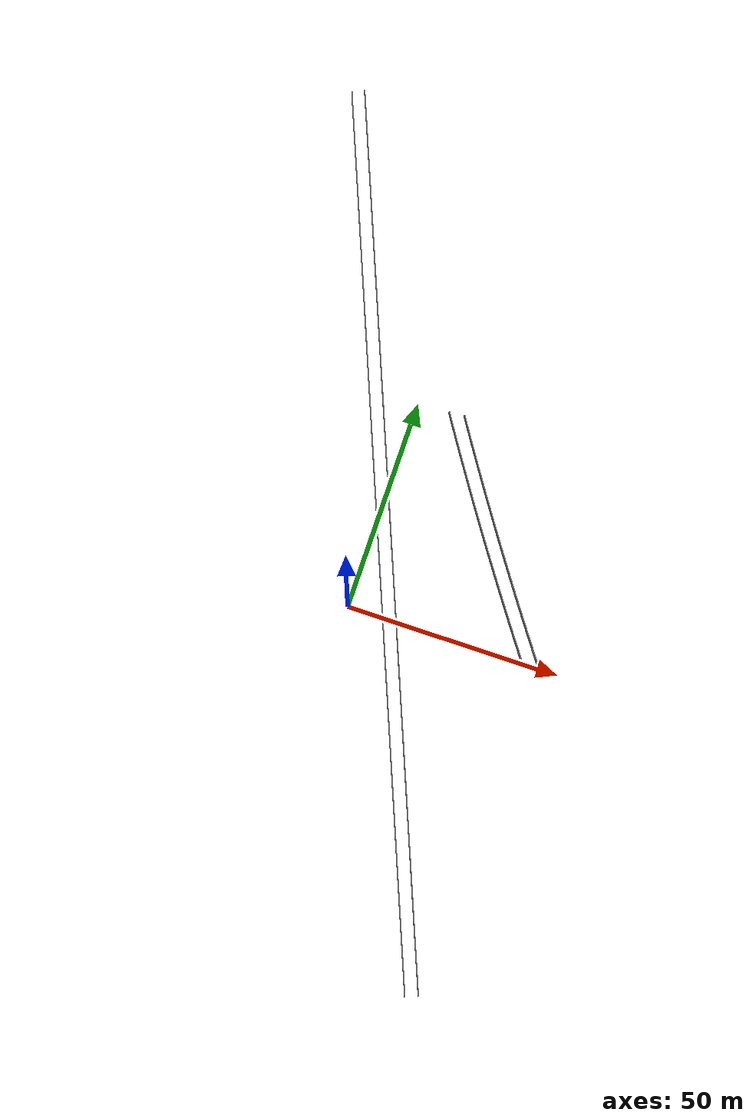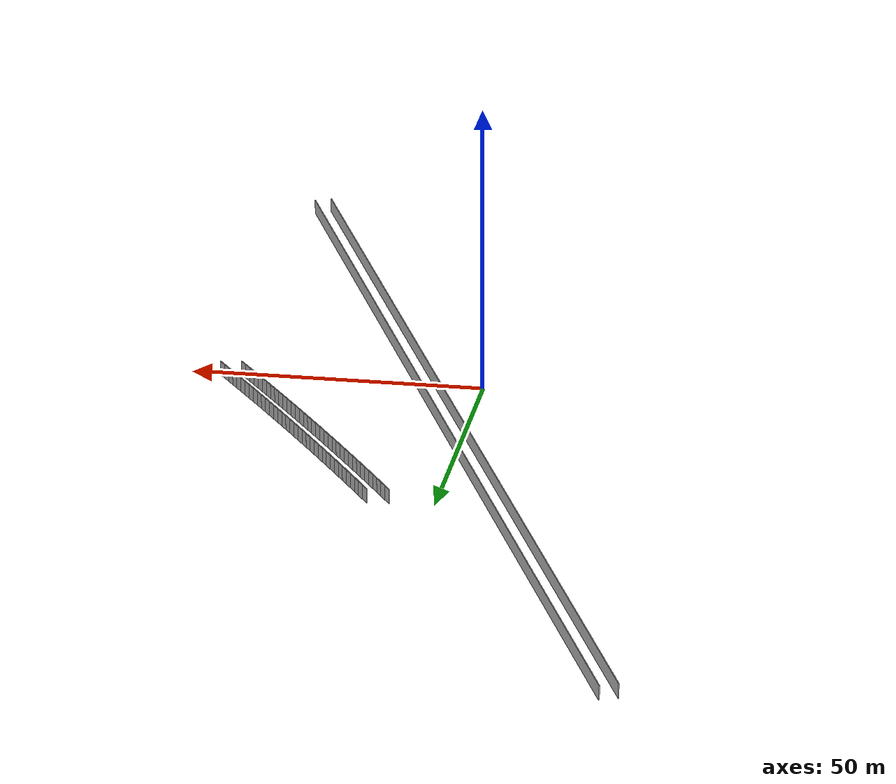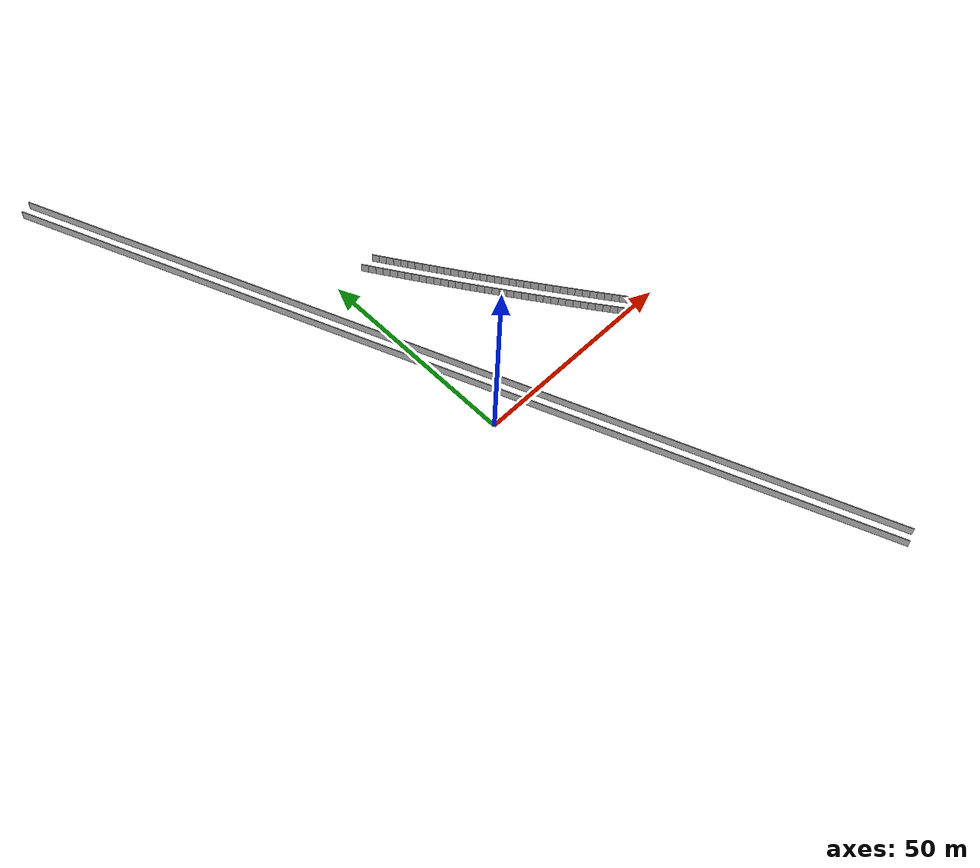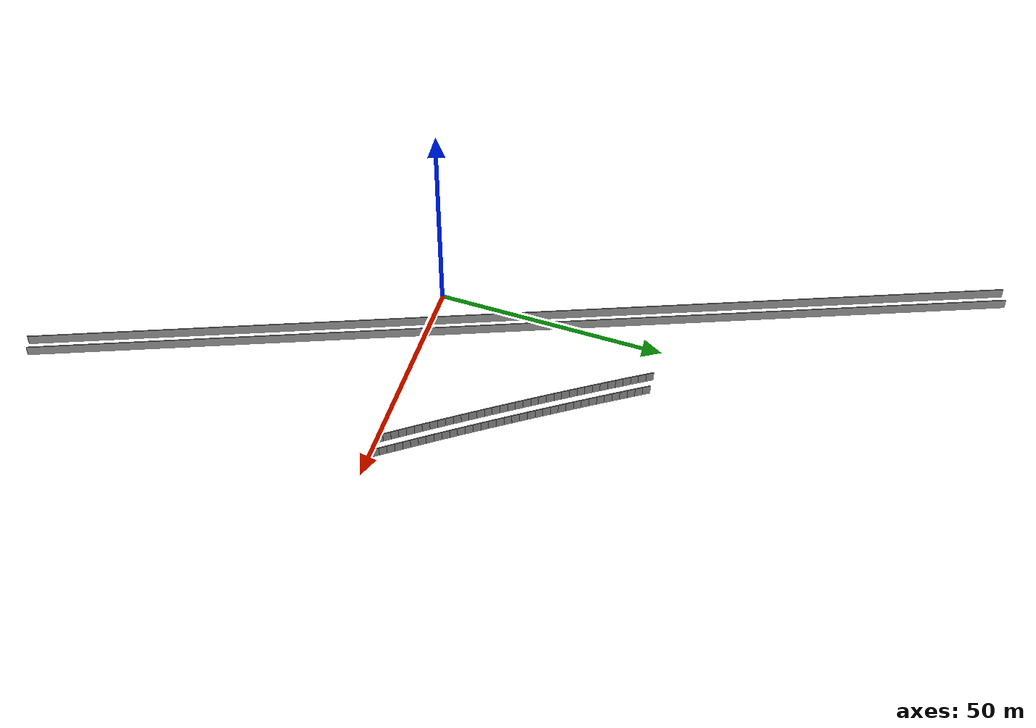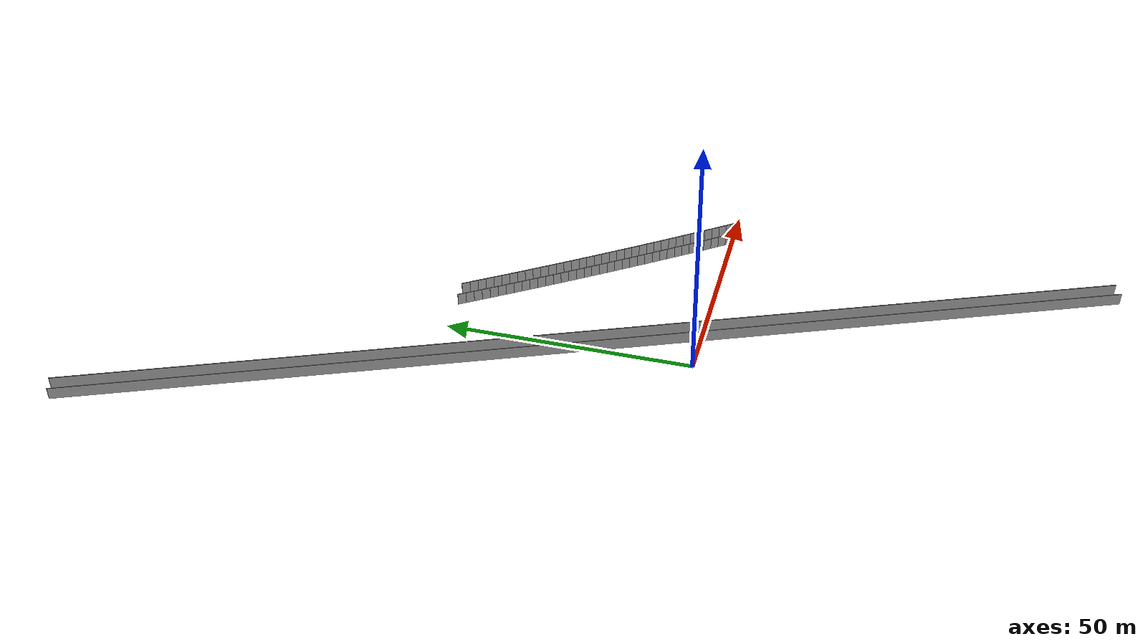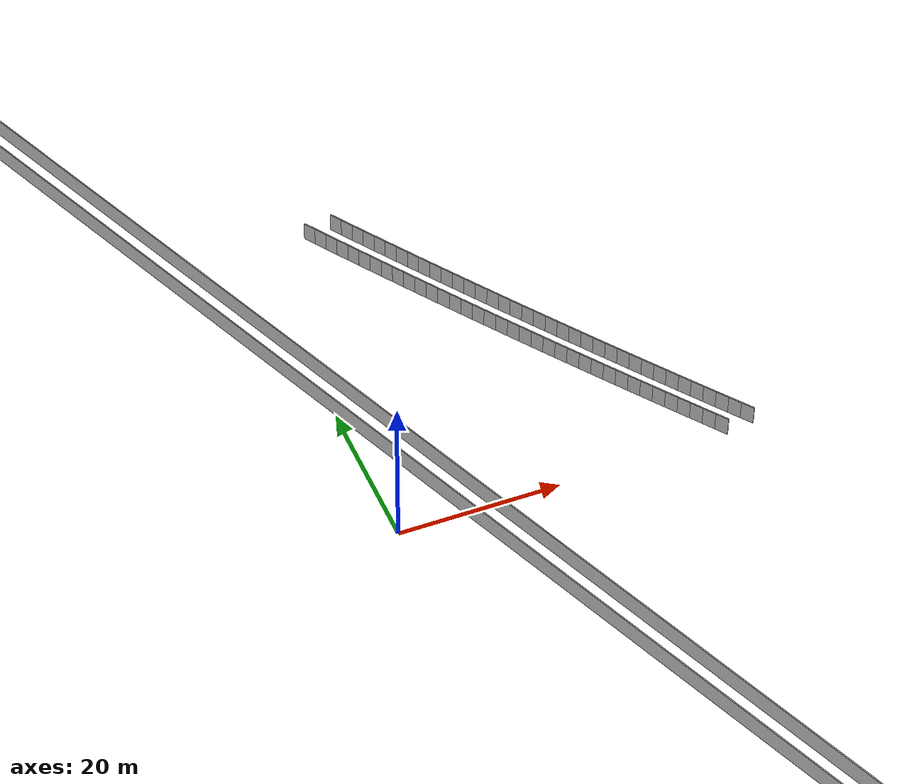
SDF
<?xml version="1.0" ?>
<sdf version="1.6">
  <model name="sps_4825">
    <pose frame="">0 0 0 0 -0 0</pose>
    <static>1</static>
    <self_collide>0</self_collide>
    <allow_auto_disable>0</allow_auto_disable>
    <link name="Wall3503">
      <kinematic>0</kinematic>
      <gravity>1</gravity>
      <self_collide>0</self_collide>
      <collision name="collision">
        <geometry>
          <box>
            <size>212.029 0.15 2.5</size>
          </box>
        </geometry>
        <pose frame="">0 0 0 0 -0 0</pose>
      </collision>
      <visual name="visual">
        <geometry>
          <box>
            <size>212.029 0.15 2.5</size>
          </box>
        </geometry>
        <pose frame="">0 0 0 0 -0 0</pose>
        <cast_shadows>1</cast_shadows>
        <transparency>0.0</transparency>
      </visual>
      <pose frame="">0.909141 18.134 1.25 0 0 -1.18648</pose>
    </link>
    <link name="Wall6498">
      <kinematic>0</kinematic>
      <gravity>1</gravity>
      <self_collide>0</self_collide>
      <collision name="collision">
        <geometry>
          <box>
            <size>1.68629 0.15 2.5</size>
          </box>
        </geometry>
        <pose frame="">0 0 0 0 -0 0</pose>
      </collision>
      <visual name="visual">
        <geometry>
          <box>
            <size>1.68629 0.15 2.5</size>
          </box>
        </geometry>
        <pose frame="">0 0 0 0 -0 0</pose>
        <cast_shadows>1</cast_shadows>
        <transparency>0.0</transparency>
      </visual>
      <pose frame="">7.78435 49.5371 1.25 0 0 -1.00286</pose>
    </link>
    <link name="Wall6499">
      <kinematic>0</kinematic>
      <gravity>1</gravity>
      <self_collide>0</self_collide>
      <collision name="collision">
        <geometry>
          <box>
            <size>1.68605 0.15 2.5</size>
          </box>
        </geometry>
        <pose frame="">0 0 0 0 -0 0</pose>
      </collision>
      <visual name="visual">
        <geometry>
          <box>
            <size>1.68605 0.15 2.5</size>
          </box>
        </geometry>
        <pose frame="">0 0 0 0 -0 0</pose>
        <cast_shadows>1</cast_shadows>
        <transparency>0.0</transparency>
      </visual>
      <pose frame="">8.69256 48.1164 1.25 0 0 -1.00114</pose>
    </link>
    <link name="Wall6500">
      <kinematic>0</kinematic>
      <gravity>1</gravity>
      <self_collide>0</self_collide>
      <collision name="collision">
        <geometry>
          <box>
            <size>1.68639 0.15 2.5</size>
          </box>
        </geometry>
        <pose frame="">0 0 0 0 -0 0</pose>
      </collision>
      <visual name="visual">
        <geometry>
          <box>
            <size>1.68639 0.15 2.5</size>
          </box>
        </geometry>
        <pose frame="">0 0 0 0 -0 0</pose>
        <cast_shadows>1</cast_shadows>
        <transparency>0.0</transparency>
      </visual>
      <pose frame="">9.60314 46.6972 1.25 0 0 -0.999548</pose>
    </link>
    <link name="Wall6501">
      <kinematic>0</kinematic>
      <gravity>1</gravity>
      <self_collide>0</self_collide>
      <collision name="collision">
        <geometry>
          <box>
            <size>1.68609 0.15 2.5</size>
          </box>
        </geometry>
        <pose frame="">0 0 0 0 -0 0</pose>
      </collision>
      <visual name="visual">
        <geometry>
          <box>
            <size>1.68609 0.15 2.5</size>
          </box>
        </geometry>
        <pose frame="">0 0 0 0 -0 0</pose>
        <cast_shadows>1</cast_shadows>
        <transparency>0.0</transparency>
      </visual>
      <pose frame="">10.5161 45.2795 1.25 0 0 -0.997754</pose>
    </link>
    <link name="Wall6502">
      <kinematic>0</kinematic>
      <gravity>1</gravity>
      <self_collide>0</self_collide>
      <collision name="collision">
        <geometry>
          <box>
            <size>1.68629 0.15 2.5</size>
          </box>
        </geometry>
        <pose frame="">0 0 0 0 -0 0</pose>
      </collision>
      <visual name="visual">
        <geometry>
          <box>
            <size>1.68629 0.15 2.5</size>
          </box>
        </geometry>
        <pose frame="">0 0 0 0 -0 0</pose>
        <cast_shadows>1</cast_shadows>
        <transparency>0.0</transparency>
      </visual>
      <pose frame="">11.4315 43.8634 1.25 0 0 -0.996105</pose>
    </link>
    <link name="Wall6503">
      <kinematic>0</kinematic>
      <gravity>1</gravity>
      <self_collide>0</self_collide>
      <collision name="collision">
        <geometry>
          <box>
            <size>1.686 0.15 2.5</size>
          </box>
        </geometry>
        <pose frame="">0 0 0 0 -0 0</pose>
      </collision>
      <visual name="visual">
        <geometry>
          <box>
            <size>1.686 0.15 2.5</size>
          </box>
        </geometry>
        <pose frame="">0 0 0 0 -0 0</pose>
        <cast_shadows>1</cast_shadows>
        <transparency>0.0</transparency>
      </visual>
      <pose frame="">12.3493 42.4489 1.25 0 0 -0.994441</pose>
    </link>
    <link name="Wall6504">
      <kinematic>0</kinematic>
      <gravity>1</gravity>
      <self_collide>0</self_collide>
      <collision name="collision">
        <geometry>
          <box>
            <size>1.68638 0.15 2.5</size>
          </box>
        </geometry>
        <pose frame="">0 0 0 0 -0 0</pose>
      </collision>
      <visual name="visual">
        <geometry>
          <box>
            <size>1.68638 0.15 2.5</size>
          </box>
        </geometry>
        <pose frame="">0 0 0 0 -0 0</pose>
        <cast_shadows>1</cast_shadows>
        <transparency>0.0</transparency>
      </visual>
      <pose frame="">13.2694 41.0359 1.25 0 0 -0.992772</pose>
    </link>
    <link name="Wall6505">
      <kinematic>0</kinematic>
      <gravity>1</gravity>
      <self_collide>0</self_collide>
      <collision name="collision">
        <geometry>
          <box>
            <size>1.68605 0.15 2.5</size>
          </box>
        </geometry>
        <pose frame="">0 0 0 0 -0 0</pose>
      </collision>
      <visual name="visual">
        <geometry>
          <box>
            <size>1.68605 0.15 2.5</size>
          </box>
        </geometry>
        <pose frame="">0 0 0 0 -0 0</pose>
        <cast_shadows>1</cast_shadows>
        <transparency>0.0</transparency>
      </visual>
      <pose frame="">14.1919 39.6244 1.25 0 0 -0.991087</pose>
    </link>
    <link name="Wall6506">
      <kinematic>0</kinematic>
      <gravity>1</gravity>
      <self_collide>0</self_collide>
      <collision name="collision">
        <geometry>
          <box>
            <size>1.68631 0.15 2.5</size>
          </box>
        </geometry>
        <pose frame="">0 0 0 0 -0 0</pose>
      </collision>
      <visual name="visual">
        <geometry>
          <box>
            <size>1.68631 0.15 2.5</size>
          </box>
        </geometry>
        <pose frame="">0 0 0 0 -0 0</pose>
        <cast_shadows>1</cast_shadows>
        <transparency>0.0</transparency>
      </visual>
      <pose frame="">15.1168 38.2145 1.25 0 0 -0.989329</pose>
    </link>
    <link name="Wall6507">
      <kinematic>0</kinematic>
      <gravity>1</gravity>
      <self_collide>0</self_collide>
      <collision name="collision">
        <geometry>
          <box>
            <size>1.68604 0.15 2.5</size>
          </box>
        </geometry>
        <pose frame="">0 0 0 0 -0 0</pose>
      </collision>
      <visual name="visual">
        <geometry>
          <box>
            <size>1.68604 0.15 2.5</size>
          </box>
        </geometry>
        <pose frame="">0 0 0 0 -0 0</pose>
        <cast_shadows>1</cast_shadows>
        <transparency>0.0</transparency>
      </visual>
      <pose frame="">16.0441 36.8062 1.25 0 0 -0.987663</pose>
    </link>
    <link name="Wall6508">
      <kinematic>0</kinematic>
      <gravity>1</gravity>
      <self_collide>0</self_collide>
      <collision name="collision">
        <geometry>
          <box>
            <size>1.68634 0.15 2.5</size>
          </box>
        </geometry>
        <pose frame="">0 0 0 0 -0 0</pose>
      </collision>
      <visual name="visual">
        <geometry>
          <box>
            <size>1.68634 0.15 2.5</size>
          </box>
        </geometry>
        <pose frame="">0 0 0 0 -0 0</pose>
        <cast_shadows>1</cast_shadows>
        <transparency>0.0</transparency>
      </visual>
      <pose frame="">16.9737 35.3994 1.25 0 0 -0.986086</pose>
    </link>
    <link name="Wall6509">
      <kinematic>0</kinematic>
      <gravity>1</gravity>
      <self_collide>0</self_collide>
      <collision name="collision">
        <geometry>
          <box>
            <size>1.68608 0.15 2.5</size>
          </box>
        </geometry>
        <pose frame="">0 0 0 0 -0 0</pose>
      </collision>
      <visual name="visual">
        <geometry>
          <box>
            <size>1.68608 0.15 2.5</size>
          </box>
        </geometry>
        <pose frame="">0 0 0 0 -0 0</pose>
        <cast_shadows>1</cast_shadows>
        <transparency>0.0</transparency>
      </visual>
      <pose frame="">17.9055 33.9941 1.25 0 0 -0.98442</pose>
    </link>
    <link name="Wall6510">
      <kinematic>0</kinematic>
      <gravity>1</gravity>
      <self_collide>0</self_collide>
      <collision name="collision">
        <geometry>
          <box>
            <size>1.68636 0.15 2.5</size>
          </box>
        </geometry>
        <pose frame="">0 0 0 0 -0 0</pose>
      </collision>
      <visual name="visual">
        <geometry>
          <box>
            <size>1.68636 0.15 2.5</size>
          </box>
        </geometry>
        <pose frame="">0 0 0 0 -0 0</pose>
        <cast_shadows>1</cast_shadows>
        <transparency>0.0</transparency>
      </visual>
      <pose frame="">18.8398 32.5904 1.25 0 0 -0.982663</pose>
    </link>
    <link name="Wall6511">
      <kinematic>0</kinematic>
      <gravity>1</gravity>
      <self_collide>0</self_collide>
      <collision name="collision">
        <geometry>
          <box>
            <size>1.68604 0.15 2.5</size>
          </box>
        </geometry>
        <pose frame="">0 0 0 0 -0 0</pose>
      </collision>
      <visual name="visual">
        <geometry>
          <box>
            <size>1.68604 0.15 2.5</size>
          </box>
        </geometry>
        <pose frame="">0 0 0 0 -0 0</pose>
        <cast_shadows>1</cast_shadows>
        <transparency>0.0</transparency>
      </visual>
      <pose frame="">19.7768 31.1885 1.25 0 0 -0.980535</pose>
    </link>
    <link name="Wall6512">
      <kinematic>0</kinematic>
      <gravity>1</gravity>
      <self_collide>0</self_collide>
      <collision name="collision">
        <geometry>
          <box>
            <size>1.68641 0.15 2.5</size>
          </box>
        </geometry>
        <pose frame="">0 0 0 0 -0 0</pose>
      </collision>
      <visual name="visual">
        <geometry>
          <box>
            <size>1.68641 0.15 2.5</size>
          </box>
        </geometry>
        <pose frame="">0 0 0 0 -0 0</pose>
        <cast_shadows>1</cast_shadows>
        <transparency>0.0</transparency>
      </visual>
      <pose frame="">20.7163 29.7882 1.25 0 0 -0.97924</pose>
    </link>
    <link name="Wall6513">
      <kinematic>0</kinematic>
      <gravity>1</gravity>
      <self_collide>0</self_collide>
      <collision name="collision">
        <geometry>
          <box>
            <size>1.68598 0.15 2.5</size>
          </box>
        </geometry>
        <pose frame="">0 0 0 0 -0 0</pose>
      </collision>
      <visual name="visual">
        <geometry>
          <box>
            <size>1.68598 0.15 2.5</size>
          </box>
        </geometry>
        <pose frame="">0 0 0 0 -0 0</pose>
        <cast_shadows>1</cast_shadows>
        <transparency>0.0</transparency>
      </visual>
      <pose frame="">21.6579 28.3894 1.25 0 0 -0.977412</pose>
    </link>
    <link name="Wall6514">
      <kinematic>0</kinematic>
      <gravity>1</gravity>
      <self_collide>0</self_collide>
      <collision name="collision">
        <geometry>
          <box>
            <size>1.68628 0.15 2.5</size>
          </box>
        </geometry>
        <pose frame="">0 0 0 0 -0 0</pose>
      </collision>
      <visual name="visual">
        <geometry>
          <box>
            <size>1.68628 0.15 2.5</size>
          </box>
        </geometry>
        <pose frame="">0 0 0 0 -0 0</pose>
        <cast_shadows>1</cast_shadows>
        <transparency>0.0</transparency>
      </visual>
      <pose frame="">22.6017 26.9922 1.25 0 0 -0.975917</pose>
    </link>
    <link name="Wall6515">
      <kinematic>0</kinematic>
      <gravity>1</gravity>
      <self_collide>0</self_collide>
      <collision name="collision">
        <geometry>
          <box>
            <size>1.6861 0.15 2.5</size>
          </box>
        </geometry>
        <pose frame="">0 0 0 0 -0 0</pose>
      </collision>
      <visual name="visual">
        <geometry>
          <box>
            <size>1.6861 0.15 2.5</size>
          </box>
        </geometry>
        <pose frame="">0 0 0 0 -0 0</pose>
        <cast_shadows>1</cast_shadows>
        <transparency>0.0</transparency>
      </visual>
      <pose frame="">23.5479 25.5965 1.25 0 0 -0.974139</pose>
    </link>
    <link name="Wall6516">
      <kinematic>0</kinematic>
      <gravity>1</gravity>
      <self_collide>0</self_collide>
      <collision name="collision">
        <geometry>
          <box>
            <size>1.68611 0.15 2.5</size>
          </box>
        </geometry>
        <pose frame="">0 0 0 0 -0 0</pose>
      </collision>
      <visual name="visual">
        <geometry>
          <box>
            <size>1.68611 0.15 2.5</size>
          </box>
        </geometry>
        <pose frame="">0 0 0 0 -0 0</pose>
        <cast_shadows>1</cast_shadows>
        <transparency>0.0</transparency>
      </visual>
      <pose frame="">24.4965 24.2025 1.25 0 0 -0.972523</pose>
    </link>
    <link name="Wall6517">
      <kinematic>0</kinematic>
      <gravity>1</gravity>
      <self_collide>0</self_collide>
      <collision name="collision">
        <geometry>
          <box>
            <size>1.68621 0.15 2.5</size>
          </box>
        </geometry>
        <pose frame="">0 0 0 0 -0 0</pose>
      </collision>
      <visual name="visual">
        <geometry>
          <box>
            <size>1.68621 0.15 2.5</size>
          </box>
        </geometry>
        <pose frame="">0 0 0 0 -0 0</pose>
        <cast_shadows>1</cast_shadows>
        <transparency>0.0</transparency>
      </visual>
      <pose frame="">25.4473 22.81 1.25 0 0 -0.970897</pose>
    </link>
    <link name="Wall6518">
      <kinematic>0</kinematic>
      <gravity>1</gravity>
      <self_collide>0</self_collide>
      <collision name="collision">
        <geometry>
          <box>
            <size>1.68628 0.15 2.5</size>
          </box>
        </geometry>
        <pose frame="">0 0 0 0 -0 0</pose>
      </collision>
      <visual name="visual">
        <geometry>
          <box>
            <size>1.68628 0.15 2.5</size>
          </box>
        </geometry>
        <pose frame="">0 0 0 0 -0 0</pose>
        <cast_shadows>1</cast_shadows>
        <transparency>0.0</transparency>
      </visual>
      <pose frame="">26.4004 21.419 1.25 0 0 -0.969171</pose>
    </link>
    <link name="Wall6519">
      <kinematic>0</kinematic>
      <gravity>1</gravity>
      <self_collide>0</self_collide>
      <collision name="collision">
        <geometry>
          <box>
            <size>1.68632 0.15 2.5</size>
          </box>
        </geometry>
        <pose frame="">0 0 0 0 -0 0</pose>
      </collision>
      <visual name="visual">
        <geometry>
          <box>
            <size>1.68632 0.15 2.5</size>
          </box>
        </geometry>
        <pose frame="">0 0 0 0 -0 0</pose>
        <cast_shadows>1</cast_shadows>
        <transparency>0.0</transparency>
      </visual>
      <pose frame="">27.356 20.0296 1.25 0 0 -0.967474</pose>
    </link>
    <link name="Wall6520">
      <kinematic>0</kinematic>
      <gravity>1</gravity>
      <self_collide>0</self_collide>
      <collision name="collision">
        <geometry>
          <box>
            <size>1.6861 0.15 2.5</size>
          </box>
        </geometry>
        <pose frame="">0 0 0 0 -0 0</pose>
      </collision>
      <visual name="visual">
        <geometry>
          <box>
            <size>1.6861 0.15 2.5</size>
          </box>
        </geometry>
        <pose frame="">0 0 0 0 -0 0</pose>
        <cast_shadows>1</cast_shadows>
        <transparency>0.0</transparency>
      </visual>
      <pose frame="">28.314 18.6419 1.25 0 0 -0.965755</pose>
    </link>
    <link name="Wall6521">
      <kinematic>0</kinematic>
      <gravity>1</gravity>
      <self_collide>0</self_collide>
      <collision name="collision">
        <geometry>
          <box>
            <size>1.68631 0.15 2.5</size>
          </box>
        </geometry>
        <pose frame="">0 0 0 0 -0 0</pose>
      </collision>
      <visual name="visual">
        <geometry>
          <box>
            <size>1.68631 0.15 2.5</size>
          </box>
        </geometry>
        <pose frame="">0 0 0 0 -0 0</pose>
        <cast_shadows>1</cast_shadows>
        <transparency>0.0</transparency>
      </visual>
      <pose frame="">29.2742 17.2558 1.25 0 0 -0.964171</pose>
    </link>
    <link name="Wall6522">
      <kinematic>0</kinematic>
      <gravity>1</gravity>
      <self_collide>0</self_collide>
      <collision name="collision">
        <geometry>
          <box>
            <size>1.68616 0.15 2.5</size>
          </box>
        </geometry>
        <pose frame="">0 0 0 0 -0 0</pose>
      </collision>
      <visual name="visual">
        <geometry>
          <box>
            <size>1.68616 0.15 2.5</size>
          </box>
        </geometry>
        <pose frame="">0 0 0 0 -0 0</pose>
        <cast_shadows>1</cast_shadows>
        <transparency>0.0</transparency>
      </visual>
      <pose frame="">30.2367 15.8713 1.25 0 0 -0.962342</pose>
    </link>
    <link name="Wall6523">
      <kinematic>0</kinematic>
      <gravity>1</gravity>
      <self_collide>0</self_collide>
      <collision name="collision">
        <geometry>
          <box>
            <size>1.68616 0.15 2.5</size>
          </box>
        </geometry>
        <pose frame="">0 0 0 0 -0 0</pose>
      </collision>
      <visual name="visual">
        <geometry>
          <box>
            <size>1.68616 0.15 2.5</size>
          </box>
        </geometry>
        <pose frame="">0 0 0 0 -0 0</pose>
        <cast_shadows>1</cast_shadows>
        <transparency>0.0</transparency>
      </visual>
      <pose frame="">31.2017 14.4885 1.25 0 0 -0.960755</pose>
    </link>
    <link name="Wall6524">
      <kinematic>0</kinematic>
      <gravity>1</gravity>
      <self_collide>0</self_collide>
      <collision name="collision">
        <geometry>
          <box>
            <size>1.68623 0.15 2.5</size>
          </box>
        </geometry>
        <pose frame="">0 0 0 0 -0 0</pose>
      </collision>
      <visual name="visual">
        <geometry>
          <box>
            <size>1.68623 0.15 2.5</size>
          </box>
        </geometry>
        <pose frame="">0 0 0 0 -0 0</pose>
        <cast_shadows>1</cast_shadows>
        <transparency>0.0</transparency>
      </visual>
      <pose frame="">32.1688 13.1073 1.25 0 0 -0.959059</pose>
    </link>
    <link name="Wall6525">
      <kinematic>0</kinematic>
      <gravity>1</gravity>
      <self_collide>0</self_collide>
      <collision name="collision">
        <geometry>
          <box>
            <size>1.68603 0.15 2.5</size>
          </box>
        </geometry>
        <pose frame="">0 0 0 0 -0 0</pose>
      </collision>
      <visual name="visual">
        <geometry>
          <box>
            <size>1.68603 0.15 2.5</size>
          </box>
        </geometry>
        <pose frame="">0 0 0 0 -0 0</pose>
        <cast_shadows>1</cast_shadows>
        <transparency>0.0</transparency>
      </visual>
      <pose frame="">33.1384 11.7278 1.25 0 0 -0.957339</pose>
    </link>
    <link name="Wall6526">
      <kinematic>0</kinematic>
      <gravity>1</gravity>
      <self_collide>0</self_collide>
      <collision name="collision">
        <geometry>
          <box>
            <size>1.68622 0.15 2.5</size>
          </box>
        </geometry>
        <pose frame="">0 0 0 0 -0 0</pose>
      </collision>
      <visual name="visual">
        <geometry>
          <box>
            <size>1.68622 0.15 2.5</size>
          </box>
        </geometry>
        <pose frame="">0 0 0 0 -0 0</pose>
        <cast_shadows>1</cast_shadows>
        <transparency>0.0</transparency>
      </visual>
      <pose frame="">34.1102 10.3499 1.25 0 0 -0.955735</pose>
    </link>
    <link name="Wall6527">
      <kinematic>0</kinematic>
      <gravity>1</gravity>
      <self_collide>0</self_collide>
      <collision name="collision">
        <geometry>
          <box>
            <size>1.68628 0.15 2.5</size>
          </box>
        </geometry>
        <pose frame="">0 0 0 0 -0 0</pose>
      </collision>
      <visual name="visual">
        <geometry>
          <box>
            <size>1.68628 0.15 2.5</size>
          </box>
        </geometry>
        <pose frame="">0 0 0 0 -0 0</pose>
        <cast_shadows>1</cast_shadows>
        <transparency>0.0</transparency>
      </visual>
      <pose frame="">35.0843 8.97349 1.25 0 0 -0.953989</pose>
    </link>
    <link name="Wall6528">
      <kinematic>0</kinematic>
      <gravity>1</gravity>
      <self_collide>0</self_collide>
      <collision name="collision">
        <geometry>
          <box>
            <size>1.68616 0.15 2.5</size>
          </box>
        </geometry>
        <pose frame="">0 0 0 0 -0 0</pose>
      </collision>
      <visual name="visual">
        <geometry>
          <box>
            <size>1.68616 0.15 2.5</size>
          </box>
        </geometry>
        <pose frame="">0 0 0 0 -0 0</pose>
        <cast_shadows>1</cast_shadows>
        <transparency>0.0</transparency>
      </visual>
      <pose frame="">36.0608 7.5988 1.25 0 0 -0.952339</pose>
    </link>
    <link name="Wall6529">
      <kinematic>0</kinematic>
      <gravity>1</gravity>
      <self_collide>0</self_collide>
      <collision name="collision">
        <geometry>
          <box>
            <size>1.68624 0.15 2.5</size>
          </box>
        </geometry>
        <pose frame="">0 0 0 0 -0 0</pose>
      </collision>
      <visual name="visual">
        <geometry>
          <box>
            <size>1.68624 0.15 2.5</size>
          </box>
        </geometry>
        <pose frame="">0 0 0 0 -0 0</pose>
        <cast_shadows>1</cast_shadows>
        <transparency>0.0</transparency>
      </visual>
      <pose frame="">37.0397 6.22578 1.25 0 0 -0.950593</pose>
    </link>
    <link name="Wall6530">
      <kinematic>0</kinematic>
      <gravity>1</gravity>
      <self_collide>0</self_collide>
      <collision name="collision">
        <geometry>
          <box>
            <size>1.6863 0.15 2.5</size>
          </box>
        </geometry>
        <pose frame="">0 0 0 0 -0 0</pose>
      </collision>
      <visual name="visual">
        <geometry>
          <box>
            <size>1.6863 0.15 2.5</size>
          </box>
        </geometry>
        <pose frame="">0 0 0 0 -0 0</pose>
        <cast_shadows>1</cast_shadows>
        <transparency>0.0</transparency>
      </visual>
      <pose frame="">38.0209 4.85438 1.25 0 0 -0.948927</pose>
    </link>
    <link name="Wall6531">
      <kinematic>0</kinematic>
      <gravity>1</gravity>
      <self_collide>0</self_collide>
      <collision name="collision">
        <geometry>
          <box>
            <size>1.68632 0.15 2.5</size>
          </box>
        </geometry>
        <pose frame="">0 0 0 0 -0 0</pose>
      </collision>
      <visual name="visual">
        <geometry>
          <box>
            <size>1.68632 0.15 2.5</size>
          </box>
        </geometry>
        <pose frame="">0 0 0 0 -0 0</pose>
        <cast_shadows>1</cast_shadows>
        <transparency>0.0</transparency>
      </visual>
      <pose frame="">39.0044 3.48457 1.25 0 0 -0.94729</pose>
    </link>
    <link name="Wall6532">
      <kinematic>0</kinematic>
      <gravity>1</gravity>
      <self_collide>0</self_collide>
      <collision name="collision">
        <geometry>
          <box>
            <size>1.68612 0.15 2.5</size>
          </box>
        </geometry>
        <pose frame="">0 0 0 0 -0 0</pose>
      </collision>
      <visual name="visual">
        <geometry>
          <box>
            <size>1.68612 0.15 2.5</size>
          </box>
        </geometry>
        <pose frame="">0 0 0 0 -0 0</pose>
        <cast_shadows>1</cast_shadows>
        <transparency>0.0</transparency>
      </visual>
      <pose frame="">39.9901 2.11647 1.25 0 0 -0.945598</pose>
    </link>
    <link name="Wall6533">
      <kinematic>0</kinematic>
      <gravity>1</gravity>
      <self_collide>0</self_collide>
      <collision name="collision">
        <geometry>
          <box>
            <size>1.68603 0.15 2.5</size>
          </box>
        </geometry>
        <pose frame="">0 0 0 0 -0 0</pose>
      </collision>
      <visual name="visual">
        <geometry>
          <box>
            <size>1.68603 0.15 2.5</size>
          </box>
        </geometry>
        <pose frame="">0 0 0 0 -0 0</pose>
        <cast_shadows>1</cast_shadows>
        <transparency>0.0</transparency>
      </visual>
      <pose frame="">40.9781 0.750197 1.25 0 0 -0.943818</pose>
    </link>
    <link name="Wall9153">
      <kinematic>0</kinematic>
      <gravity>1</gravity>
      <self_collide>0</self_collide>
      <collision name="collision">
        <geometry>
          <box>
            <size>212.029 0.15 2.5</size>
          </box>
        </geometry>
        <pose frame="">0 0 0 0 -0 0</pose>
      </collision>
      <visual name="visual">
        <geometry>
          <box>
            <size>212.029 0.15 2.5</size>
          </box>
        </geometry>
        <pose frame="">0 0 0 0 -0 0</pose>
        <cast_shadows>1</cast_shadows>
        <transparency>0.0</transparency>
      </visual>
      <pose frame="">3.69045 19.2586 1.25 0 0 -1.18648</pose>
    </link>
    <link name="Wall9207">
      <kinematic>0</kinematic>
      <gravity>1</gravity>
      <self_collide>0</self_collide>
      <collision name="collision">
        <geometry>
          <box>
            <size>1.68083 0.15 2.5</size>
          </box>
        </geometry>
        <pose frame="">0 0 0 0 -0 0</pose>
      </collision>
      <visual name="visual">
        <geometry>
          <box>
            <size>1.68083 0.15 2.5</size>
          </box>
        </geometry>
        <pose frame="">0 0 0 0 -0 0</pose>
        <cast_shadows>1</cast_shadows>
        <transparency>0.0</transparency>
      </visual>
      <pose frame="">44.5569 1.26741 1.25 0 -0 2.19957</pose>
    </link>
    <link name="Wall9208">
      <kinematic>0</kinematic>
      <gravity>1</gravity>
      <self_collide>0</self_collide>
      <collision name="collision">
        <geometry>
          <box>
            <size>1.68077 0.15 2.5</size>
          </box>
        </geometry>
        <pose frame="">0 0 0 0 -0 0</pose>
      </collision>
      <visual name="visual">
        <geometry>
          <box>
            <size>1.68077 0.15 2.5</size>
          </box>
        </geometry>
        <pose frame="">0 0 0 0 -0 0</pose>
        <cast_shadows>1</cast_shadows>
        <transparency>0.0</transparency>
      </visual>
      <pose frame="">43.5697 2.6277 1.25 0 -0 2.19766</pose>
    </link>
    <link name="Wall9209">
      <kinematic>0</kinematic>
      <gravity>1</gravity>
      <self_collide>0</self_collide>
      <collision name="collision">
        <geometry>
          <box>
            <size>1.6807 0.15 2.5</size>
          </box>
        </geometry>
        <pose frame="">0 0 0 0 -0 0</pose>
      </collision>
      <visual name="visual">
        <geometry>
          <box>
            <size>1.6807 0.15 2.5</size>
          </box>
        </geometry>
        <pose frame="">0 0 0 0 -0 0</pose>
        <cast_shadows>1</cast_shadows>
        <transparency>0.0</transparency>
      </visual>
      <pose frame="">42.5849 3.9897 1.25 0 -0 2.19599</pose>
    </link>
    <link name="Wall9210">
      <kinematic>0</kinematic>
      <gravity>1</gravity>
      <self_collide>0</self_collide>
      <collision name="collision">
        <geometry>
          <box>
            <size>1.68078 0.15 2.5</size>
          </box>
        </geometry>
        <pose frame="">0 0 0 0 -0 0</pose>
      </collision>
      <visual name="visual">
        <geometry>
          <box>
            <size>1.68078 0.15 2.5</size>
          </box>
        </geometry>
        <pose frame="">0 0 0 0 -0 0</pose>
        <cast_shadows>1</cast_shadows>
        <transparency>0.0</transparency>
      </visual>
      <pose frame="">41.6023 5.35329 1.25 0 -0 2.19444</pose>
    </link>
    <link name="Wall9211">
      <kinematic>0</kinematic>
      <gravity>1</gravity>
      <self_collide>0</self_collide>
      <collision name="collision">
        <geometry>
          <box>
            <size>1.68102 0.15 2.5</size>
          </box>
        </geometry>
        <pose frame="">0 0 0 0 -0 0</pose>
      </collision>
      <visual name="visual">
        <geometry>
          <box>
            <size>1.68102 0.15 2.5</size>
          </box>
        </geometry>
        <pose frame="">0 0 0 0 -0 0</pose>
        <cast_shadows>1</cast_shadows>
        <transparency>0.0</transparency>
      </visual>
      <pose frame="">40.6219 6.71867 1.25 0 -0 2.19259</pose>
    </link>
    <link name="Wall9212">
      <kinematic>0</kinematic>
      <gravity>1</gravity>
      <self_collide>0</self_collide>
      <collision name="collision">
        <geometry>
          <box>
            <size>1.68092 0.15 2.5</size>
          </box>
        </geometry>
        <pose frame="">0 0 0 0 -0 0</pose>
      </collision>
      <visual name="visual">
        <geometry>
          <box>
            <size>1.68092 0.15 2.5</size>
          </box>
        </geometry>
        <pose frame="">0 0 0 0 -0 0</pose>
        <cast_shadows>1</cast_shadows>
        <transparency>0.0</transparency>
      </visual>
      <pose frame="">39.6438 8.08577 1.25 0 -0 2.19107</pose>
    </link>
    <link name="Wall9213">
      <kinematic>0</kinematic>
      <gravity>1</gravity>
      <self_collide>0</self_collide>
      <collision name="collision">
        <geometry>
          <box>
            <size>1.68051 0.15 2.5</size>
          </box>
        </geometry>
        <pose frame="">0 0 0 0 -0 0</pose>
      </collision>
      <visual name="visual">
        <geometry>
          <box>
            <size>1.68051 0.15 2.5</size>
          </box>
        </geometry>
        <pose frame="">0 0 0 0 -0 0</pose>
        <cast_shadows>1</cast_shadows>
        <transparency>0.0</transparency>
      </visual>
      <pose frame="">38.6681 9.45427 1.25 0 -0 2.18929</pose>
    </link>
    <link name="Wall9214">
      <kinematic>0</kinematic>
      <gravity>1</gravity>
      <self_collide>0</self_collide>
      <collision name="collision">
        <geometry>
          <box>
            <size>1.68091 0.15 2.5</size>
          </box>
        </geometry>
        <pose frame="">0 0 0 0 -0 0</pose>
      </collision>
      <visual name="visual">
        <geometry>
          <box>
            <size>1.68091 0.15 2.5</size>
          </box>
        </geometry>
        <pose frame="">0 0 0 0 -0 0</pose>
        <cast_shadows>1</cast_shadows>
        <transparency>0.0</transparency>
      </visual>
      <pose frame="">37.6948 10.8245 1.25 0 -0 2.18756</pose>
    </link>
    <link name="Wall9215">
      <kinematic>0</kinematic>
      <gravity>1</gravity>
      <self_collide>0</self_collide>
      <collision name="collision">
        <geometry>
          <box>
            <size>1.68075 0.15 2.5</size>
          </box>
        </geometry>
        <pose frame="">0 0 0 0 -0 0</pose>
      </collision>
      <visual name="visual">
        <geometry>
          <box>
            <size>1.68075 0.15 2.5</size>
          </box>
        </geometry>
        <pose frame="">0 0 0 0 -0 0</pose>
        <cast_shadows>1</cast_shadows>
        <transparency>0.0</transparency>
      </visual>
      <pose frame="">36.7237 12.1964 1.25 0 -0 2.18598</pose>
    </link>
    <link name="Wall9216">
      <kinematic>0</kinematic>
      <gravity>1</gravity>
      <self_collide>0</self_collide>
      <collision name="collision">
        <geometry>
          <box>
            <size>1.68083 0.15 2.5</size>
          </box>
        </geometry>
        <pose frame="">0 0 0 0 -0 0</pose>
      </collision>
      <visual name="visual">
        <geometry>
          <box>
            <size>1.68083 0.15 2.5</size>
          </box>
        </geometry>
        <pose frame="">0 0 0 0 -0 0</pose>
        <cast_shadows>1</cast_shadows>
        <transparency>0.0</transparency>
      </visual>
      <pose frame="">35.7549 13.5699 1.25 0 -0 2.18421</pose>
    </link>
    <link name="Wall9217">
      <kinematic>0</kinematic>
      <gravity>1</gravity>
      <self_collide>0</self_collide>
      <collision name="collision">
        <geometry>
          <box>
            <size>1.68086 0.15 2.5</size>
          </box>
        </geometry>
        <pose frame="">0 0 0 0 -0 0</pose>
      </collision>
      <visual name="visual">
        <geometry>
          <box>
            <size>1.68086 0.15 2.5</size>
          </box>
        </geometry>
        <pose frame="">0 0 0 0 -0 0</pose>
        <cast_shadows>1</cast_shadows>
        <transparency>0.0</transparency>
      </visual>
      <pose frame="">34.7884 14.9451 1.25 0 -0 2.1826</pose>
    </link>
    <link name="Wall9218">
      <kinematic>0</kinematic>
      <gravity>1</gravity>
      <self_collide>0</self_collide>
      <collision name="collision">
        <geometry>
          <box>
            <size>1.68085 0.15 2.5</size>
          </box>
        </geometry>
        <pose frame="">0 0 0 0 -0 0</pose>
      </collision>
      <visual name="visual">
        <geometry>
          <box>
            <size>1.68085 0.15 2.5</size>
          </box>
        </geometry>
        <pose frame="">0 0 0 0 -0 0</pose>
        <cast_shadows>1</cast_shadows>
        <transparency>0.0</transparency>
      </visual>
      <pose frame="">33.8242 16.3219 1.25 0 -0 2.18088</pose>
    </link>
    <link name="Wall9219">
      <kinematic>0</kinematic>
      <gravity>1</gravity>
      <self_collide>0</self_collide>
      <collision name="collision">
        <geometry>
          <box>
            <size>1.68079 0.15 2.5</size>
          </box>
        </geometry>
        <pose frame="">0 0 0 0 -0 0</pose>
      </collision>
      <visual name="visual">
        <geometry>
          <box>
            <size>1.68079 0.15 2.5</size>
          </box>
        </geometry>
        <pose frame="">0 0 0 0 -0 0</pose>
        <cast_shadows>1</cast_shadows>
        <transparency>0.0</transparency>
      </visual>
      <pose frame="">32.8624 17.7003 1.25 0 -0 2.17918</pose>
    </link>
    <link name="Wall9220">
      <kinematic>0</kinematic>
      <gravity>1</gravity>
      <self_collide>0</self_collide>
      <collision name="collision">
        <geometry>
          <box>
            <size>1.68069 0.15 2.5</size>
          </box>
        </geometry>
        <pose frame="">0 0 0 0 -0 0</pose>
      </collision>
      <visual name="visual">
        <geometry>
          <box>
            <size>1.68069 0.15 2.5</size>
          </box>
        </geometry>
        <pose frame="">0 0 0 0 -0 0</pose>
        <cast_shadows>1</cast_shadows>
        <transparency>0.0</transparency>
      </visual>
      <pose frame="">31.9029 19.0803 1.25 0 -0 2.17744</pose>
    </link>
    <link name="Wall9221">
      <kinematic>0</kinematic>
      <gravity>1</gravity>
      <self_collide>0</self_collide>
      <collision name="collision">
        <geometry>
          <box>
            <size>1.68075 0.15 2.5</size>
          </box>
        </geometry>
        <pose frame="">0 0 0 0 -0 0</pose>
      </collision>
      <visual name="visual">
        <geometry>
          <box>
            <size>1.68075 0.15 2.5</size>
          </box>
        </geometry>
        <pose frame="">0 0 0 0 -0 0</pose>
        <cast_shadows>1</cast_shadows>
        <transparency>0.0</transparency>
      </visual>
      <pose frame="">30.9459 20.4619 1.25 0 -0 2.17583</pose>
    </link>
    <link name="Wall9222">
      <kinematic>0</kinematic>
      <gravity>1</gravity>
      <self_collide>0</self_collide>
      <collision name="collision">
        <geometry>
          <box>
            <size>1.6809 0.15 2.5</size>
          </box>
        </geometry>
        <pose frame="">0 0 0 0 -0 0</pose>
      </collision>
      <visual name="visual">
        <geometry>
          <box>
            <size>1.6809 0.15 2.5</size>
          </box>
        </geometry>
        <pose frame="">0 0 0 0 -0 0</pose>
        <cast_shadows>1</cast_shadows>
        <transparency>0.0</transparency>
      </visual>
      <pose frame="">29.9911 21.8452 1.25 0 -0 2.17405</pose>
    </link>
    <link name="Wall9223">
      <kinematic>0</kinematic>
      <gravity>1</gravity>
      <self_collide>0</self_collide>
      <collision name="collision">
        <geometry>
          <box>
            <size>1.68076 0.15 2.5</size>
          </box>
        </geometry>
        <pose frame="">0 0 0 0 -0 0</pose>
      </collision>
      <visual name="visual">
        <geometry>
          <box>
            <size>1.68076 0.15 2.5</size>
          </box>
        </geometry>
        <pose frame="">0 0 0 0 -0 0</pose>
        <cast_shadows>1</cast_shadows>
        <transparency>0.0</transparency>
      </visual>
      <pose frame="">29.0385 23.2301 1.25 0 -0 2.17252</pose>
    </link>
    <link name="Wall9224">
      <kinematic>0</kinematic>
      <gravity>1</gravity>
      <self_collide>0</self_collide>
      <collision name="collision">
        <geometry>
          <box>
            <size>1.68094 0.15 2.5</size>
          </box>
        </geometry>
        <pose frame="">0 0 0 0 -0 0</pose>
      </collision>
      <visual name="visual">
        <geometry>
          <box>
            <size>1.68094 0.15 2.5</size>
          </box>
        </geometry>
        <pose frame="">0 0 0 0 -0 0</pose>
        <cast_shadows>1</cast_shadows>
        <transparency>0.0</transparency>
      </visual>
      <pose frame="">28.0883 24.6166 1.25 0 -0 2.17068</pose>
    </link>
    <link name="Wall9225">
      <kinematic>0</kinematic>
      <gravity>1</gravity>
      <self_collide>0</self_collide>
      <collision name="collision">
        <geometry>
          <box>
            <size>1.68071 0.15 2.5</size>
          </box>
        </geometry>
        <pose frame="">0 0 0 0 -0 0</pose>
      </collision>
      <visual name="visual">
        <geometry>
          <box>
            <size>1.68071 0.15 2.5</size>
          </box>
        </geometry>
        <pose frame="">0 0 0 0 -0 0</pose>
        <cast_shadows>1</cast_shadows>
        <transparency>0.0</transparency>
      </visual>
      <pose frame="">27.1406 26.0047 1.25 0 -0 2.16906</pose>
    </link>
    <link name="Wall9226">
      <kinematic>0</kinematic>
      <gravity>1</gravity>
      <self_collide>0</self_collide>
      <collision name="collision">
        <geometry>
          <box>
            <size>1.68084 0.15 2.5</size>
          </box>
        </geometry>
        <pose frame="">0 0 0 0 -0 0</pose>
      </collision>
      <visual name="visual">
        <geometry>
          <box>
            <size>1.68084 0.15 2.5</size>
          </box>
        </geometry>
        <pose frame="">0 0 0 0 -0 0</pose>
        <cast_shadows>1</cast_shadows>
        <transparency>0.0</transparency>
      </visual>
      <pose frame="">26.1952 27.3944 1.25 0 -0 2.1673</pose>
    </link>
    <link name="Wall9227">
      <kinematic>0</kinematic>
      <gravity>1</gravity>
      <self_collide>0</self_collide>
      <collision name="collision">
        <geometry>
          <box>
            <size>1.68082 0.15 2.5</size>
          </box>
        </geometry>
        <pose frame="">0 0 0 0 -0 0</pose>
      </collision>
      <visual name="visual">
        <geometry>
          <box>
            <size>1.68082 0.15 2.5</size>
          </box>
        </geometry>
        <pose frame="">0 0 0 0 -0 0</pose>
        <cast_shadows>1</cast_shadows>
        <transparency>0.0</transparency>
      </visual>
      <pose frame="">25.252 28.7857 1.25 0 -0 2.16573</pose>
    </link>
    <link name="Wall9228">
      <kinematic>0</kinematic>
      <gravity>1</gravity>
      <self_collide>0</self_collide>
      <collision name="collision">
        <geometry>
          <box>
            <size>1.68076 0.15 2.5</size>
          </box>
        </geometry>
        <pose frame="">0 0 0 0 -0 0</pose>
      </collision>
      <visual name="visual">
        <geometry>
          <box>
            <size>1.68076 0.15 2.5</size>
          </box>
        </geometry>
        <pose frame="">0 0 0 0 -0 0</pose>
        <cast_shadows>1</cast_shadows>
        <transparency>0.0</transparency>
      </visual>
      <pose frame="">24.3112 30.1785 1.25 0 -0 2.164</pose>
    </link>
    <link name="Wall9229">
      <kinematic>0</kinematic>
      <gravity>1</gravity>
      <self_collide>0</self_collide>
      <collision name="collision">
        <geometry>
          <box>
            <size>1.68063 0.15 2.5</size>
          </box>
        </geometry>
        <pose frame="">0 0 0 0 -0 0</pose>
      </collision>
      <visual name="visual">
        <geometry>
          <box>
            <size>1.68063 0.15 2.5</size>
          </box>
        </geometry>
        <pose frame="">0 0 0 0 -0 0</pose>
        <cast_shadows>1</cast_shadows>
        <transparency>0.0</transparency>
      </visual>
      <pose frame="">23.3726 31.5727 1.25 0 -0 2.16265</pose>
    </link>
    <link name="Wall9230">
      <kinematic>0</kinematic>
      <gravity>1</gravity>
      <self_collide>0</self_collide>
      <collision name="collision">
        <geometry>
          <box>
            <size>1.68085 0.15 2.5</size>
          </box>
        </geometry>
        <pose frame="">0 0 0 0 -0 0</pose>
      </collision>
      <visual name="visual">
        <geometry>
          <box>
            <size>1.68085 0.15 2.5</size>
          </box>
        </geometry>
        <pose frame="">0 0 0 0 -0 0</pose>
        <cast_shadows>1</cast_shadows>
        <transparency>0.0</transparency>
      </visual>
      <pose frame="">22.4363 32.9685 1.25 0 -0 2.16068</pose>
    </link>
    <link name="Wall9231">
      <kinematic>0</kinematic>
      <gravity>1</gravity>
      <self_collide>0</self_collide>
      <collision name="collision">
        <geometry>
          <box>
            <size>1.68079 0.15 2.5</size>
          </box>
        </geometry>
        <pose frame="">0 0 0 0 -0 0</pose>
      </collision>
      <visual name="visual">
        <geometry>
          <box>
            <size>1.68079 0.15 2.5</size>
          </box>
        </geometry>
        <pose frame="">0 0 0 0 -0 0</pose>
        <cast_shadows>1</cast_shadows>
        <transparency>0.0</transparency>
      </visual>
      <pose frame="">21.5024 34.366 1.25 0 -0 2.15913</pose>
    </link>
    <link name="Wall9232">
      <kinematic>0</kinematic>
      <gravity>1</gravity>
      <self_collide>0</self_collide>
      <collision name="collision">
        <geometry>
          <box>
            <size>1.68086 0.15 2.5</size>
          </box>
        </geometry>
        <pose frame="">0 0 0 0 -0 0</pose>
      </collision>
      <visual name="visual">
        <geometry>
          <box>
            <size>1.68086 0.15 2.5</size>
          </box>
        </geometry>
        <pose frame="">0 0 0 0 -0 0</pose>
        <cast_shadows>1</cast_shadows>
        <transparency>0.0</transparency>
      </visual>
      <pose frame="">20.5709 35.7651 1.25 0 -0 2.15723</pose>
    </link>
    <link name="Wall9233">
      <kinematic>0</kinematic>
      <gravity>1</gravity>
      <self_collide>0</self_collide>
      <collision name="collision">
        <geometry>
          <box>
            <size>1.68066 0.15 2.5</size>
          </box>
        </geometry>
        <pose frame="">0 0 0 0 -0 0</pose>
      </collision>
      <visual name="visual">
        <geometry>
          <box>
            <size>1.68066 0.15 2.5</size>
          </box>
        </geometry>
        <pose frame="">0 0 0 0 -0 0</pose>
        <cast_shadows>1</cast_shadows>
        <transparency>0.0</transparency>
      </visual>
      <pose frame="">19.642 37.1658 1.25 0 -0 2.15561</pose>
    </link>
    <link name="Wall9234">
      <kinematic>0</kinematic>
      <gravity>1</gravity>
      <self_collide>0</self_collide>
      <collision name="collision">
        <geometry>
          <box>
            <size>1.68098 0.15 2.5</size>
          </box>
        </geometry>
        <pose frame="">0 0 0 0 -0 0</pose>
      </collision>
      <visual name="visual">
        <geometry>
          <box>
            <size>1.68098 0.15 2.5</size>
          </box>
        </geometry>
        <pose frame="">0 0 0 0 -0 0</pose>
        <cast_shadows>1</cast_shadows>
        <transparency>0.0</transparency>
      </visual>
      <pose frame="">18.7153 38.5681 1.25 0 -0 2.15391</pose>
    </link>
    <link name="Wall9235">
      <kinematic>0</kinematic>
      <gravity>1</gravity>
      <self_collide>0</self_collide>
      <collision name="collision">
        <geometry>
          <box>
            <size>1.68074 0.15 2.5</size>
          </box>
        </geometry>
        <pose frame="">0 0 0 0 -0 0</pose>
      </collision>
      <visual name="visual">
        <geometry>
          <box>
            <size>1.68074 0.15 2.5</size>
          </box>
        </geometry>
        <pose frame="">0 0 0 0 -0 0</pose>
        <cast_shadows>1</cast_shadows>
        <transparency>0.0</transparency>
      </visual>
      <pose frame="">17.7909 39.972 1.25 0 -0 2.15218</pose>
    </link>
    <link name="Wall9236">
      <kinematic>0</kinematic>
      <gravity>1</gravity>
      <self_collide>0</self_collide>
      <collision name="collision">
        <geometry>
          <box>
            <size>1.68088 0.15 2.5</size>
          </box>
        </geometry>
        <pose frame="">0 0 0 0 -0 0</pose>
      </collision>
      <visual name="visual">
        <geometry>
          <box>
            <size>1.68088 0.15 2.5</size>
          </box>
        </geometry>
        <pose frame="">0 0 0 0 -0 0</pose>
        <cast_shadows>1</cast_shadows>
        <transparency>0.0</transparency>
      </visual>
      <pose frame="">16.869 41.3774 1.25 0 -0 2.15052</pose>
    </link>
    <link name="Wall9237">
      <kinematic>0</kinematic>
      <gravity>1</gravity>
      <self_collide>0</self_collide>
      <collision name="collision">
        <geometry>
          <box>
            <size>1.6806 0.15 2.5</size>
          </box>
        </geometry>
        <pose frame="">0 0 0 0 -0 0</pose>
      </collision>
      <visual name="visual">
        <geometry>
          <box>
            <size>1.6806 0.15 2.5</size>
          </box>
        </geometry>
        <pose frame="">0 0 0 0 -0 0</pose>
        <cast_shadows>1</cast_shadows>
        <transparency>0.0</transparency>
      </visual>
      <pose frame="">15.9495 42.7843 1.25 0 -0 2.14881</pose>
    </link>
    <link name="Wall9238">
      <kinematic>0</kinematic>
      <gravity>1</gravity>
      <self_collide>0</self_collide>
      <collision name="collision">
        <geometry>
          <box>
            <size>1.68086 0.15 2.5</size>
          </box>
        </geometry>
        <pose frame="">0 0 0 0 -0 0</pose>
      </collision>
      <visual name="visual">
        <geometry>
          <box>
            <size>1.68086 0.15 2.5</size>
          </box>
        </geometry>
        <pose frame="">0 0 0 0 -0 0</pose>
        <cast_shadows>1</cast_shadows>
        <transparency>0.0</transparency>
      </visual>
      <pose frame="">15.0325 44.1928 1.25 0 -0 2.14711</pose>
    </link>
    <link name="Wall9239">
      <kinematic>0</kinematic>
      <gravity>1</gravity>
      <self_collide>0</self_collide>
      <collision name="collision">
        <geometry>
          <box>
            <size>1.68082 0.15 2.5</size>
          </box>
        </geometry>
        <pose frame="">0 0 0 0 -0 0</pose>
      </collision>
      <visual name="visual">
        <geometry>
          <box>
            <size>1.68082 0.15 2.5</size>
          </box>
        </geometry>
        <pose frame="">0 0 0 0 -0 0</pose>
        <cast_shadows>1</cast_shadows>
        <transparency>0.0</transparency>
      </visual>
      <pose frame="">14.1177 45.6029 1.25 0 -0 2.14547</pose>
    </link>
    <link name="Wall9240">
      <kinematic>0</kinematic>
      <gravity>1</gravity>
      <self_collide>0</self_collide>
      <collision name="collision">
        <geometry>
          <box>
            <size>1.68072 0.15 2.5</size>
          </box>
        </geometry>
        <pose frame="">0 0 0 0 -0 0</pose>
      </collision>
      <visual name="visual">
        <geometry>
          <box>
            <size>1.68072 0.15 2.5</size>
          </box>
        </geometry>
        <pose frame="">0 0 0 0 -0 0</pose>
        <cast_shadows>1</cast_shadows>
        <transparency>0.0</transparency>
      </visual>
      <pose frame="">13.2052 47.0144 1.25 0 -0 2.14391</pose>
    </link>
    <link name="Wall9241">
      <kinematic>0</kinematic>
      <gravity>1</gravity>
      <self_collide>0</self_collide>
      <collision name="collision">
        <geometry>
          <box>
            <size>1.68088 0.15 2.5</size>
          </box>
        </geometry>
        <pose frame="">0 0 0 0 -0 0</pose>
      </collision>
      <visual name="visual">
        <geometry>
          <box>
            <size>1.68088 0.15 2.5</size>
          </box>
        </geometry>
        <pose frame="">0 0 0 0 -0 0</pose>
        <cast_shadows>1</cast_shadows>
        <transparency>0.0</transparency>
      </visual>
      <pose frame="">12.2951 48.4275 1.25 0 -0 2.14204</pose>
    </link>
    <link name="Wall9242">
      <kinematic>0</kinematic>
      <gravity>1</gravity>
      <self_collide>0</self_collide>
      <collision name="collision">
        <geometry>
          <box>
            <size>1.68087 0.15 2.5</size>
          </box>
        </geometry>
        <pose frame="">0 0 0 0 -0 0</pose>
      </collision>
      <visual name="visual">
        <geometry>
          <box>
            <size>1.68087 0.15 2.5</size>
          </box>
        </geometry>
        <pose frame="">0 0 0 0 -0 0</pose>
        <cast_shadows>1</cast_shadows>
        <transparency>0.0</transparency>
      </visual>
      <pose frame="">11.3874 49.8422 1.25 0 -0 2.14049</pose>
    </link>
  </model>
</sdf>
